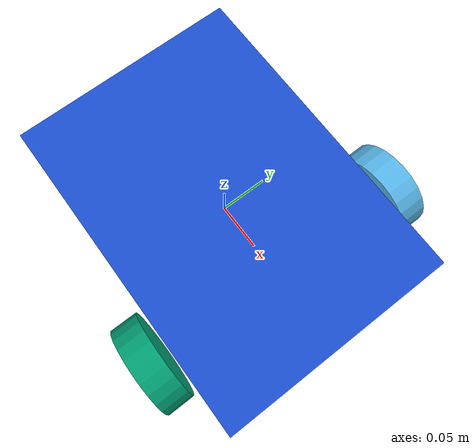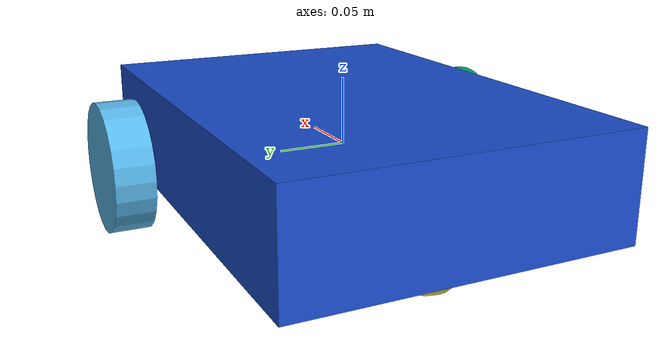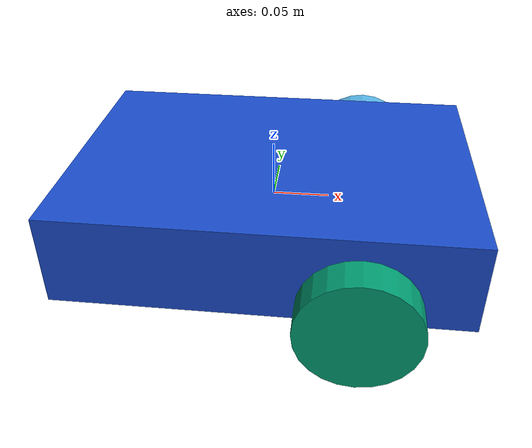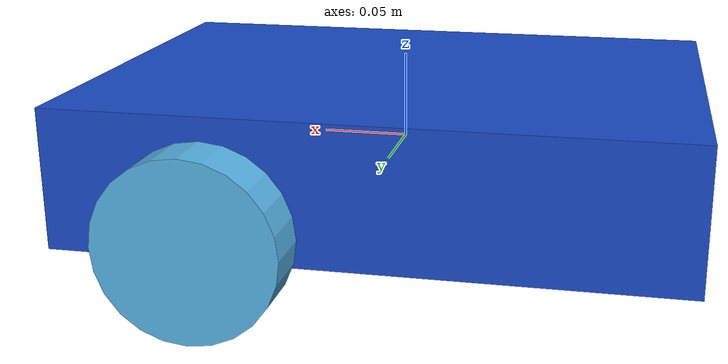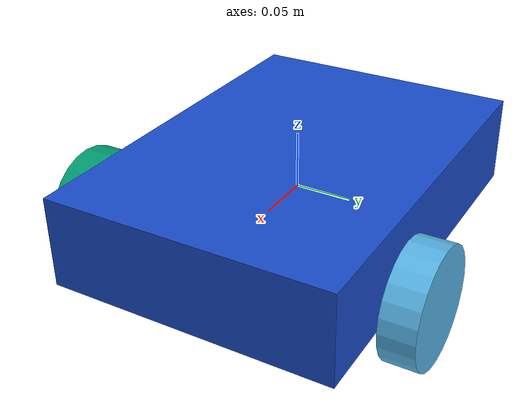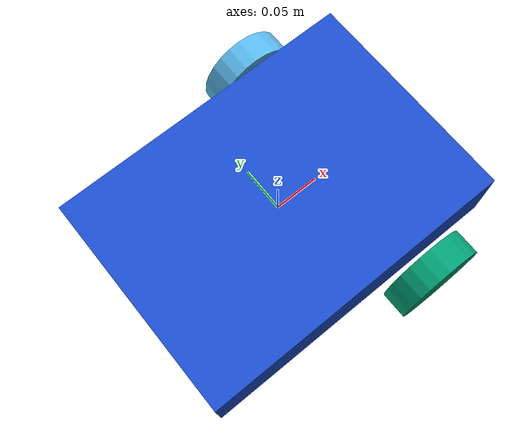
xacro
<?xml version="1.0"?>
<!-- Minimal diff-drive robot for Gazebo Fortress (ROS 2 Humble's paired Gazebo). -->
<robot name="diffbot" xmlns:xacro="http://www.ros.org/wiki/xacro">
  <xacro:property name="wheel_r" value="0.05"/>
  <xacro:property name="wheel_sep" value="0.30"/>
  <xacro:property name="wheel_w" value="0.03"/>

  <xacro:macro name="box_inertia" params="m x y z">
    <inertia ixx="${m*(y*y+z*z)/12}" iyy="${m*(x*x+z*z)/12}" izz="${m*(x*x+y*y)/12}"
             ixy="0" ixz="0" iyz="0"/>
  </xacro:macro>

  <link name="base_link">
    <visual><geometry><box size="0.35 0.25 0.08"/></geometry>
      <material name="blue"><color rgba="0.1 0.3 0.8 1"/></material></visual>
    <collision><geometry><box size="0.35 0.25 0.08"/></geometry></collision>
    <inertial><mass value="3.0"/><xacro:box_inertia m="3.0" x="0.35" y="0.25" z="0.08"/></inertial>
  </link>

  <xacro:macro name="wheel" params="side y">
    <link name="${side}_wheel">
      <visual><origin rpy="${pi/2} 0 0"/><geometry><cylinder radius="${wheel_r}" length="${wheel_w}"/></geometry></visual>
      <collision><origin rpy="${pi/2} 0 0"/><geometry><cylinder radius="${wheel_r}" length="${wheel_w}"/></geometry></collision>
      <inertial><mass value="0.3"/>
        <inertia ixx="0.0002" iyy="0.0004" izz="0.0002" ixy="0" ixz="0" iyz="0"/></inertial>
    </link>
    <joint name="${side}_wheel_joint" type="continuous">
      <parent link="base_link"/><child link="${side}_wheel"/>
      <origin xyz="0.08 ${y} -0.02"/><axis xyz="0 1 0"/>
    </joint>
  </xacro:macro>
  <xacro:wheel side="left" y="${wheel_sep/2}"/>
  <xacro:wheel side="right" y="${-wheel_sep/2}"/>

  <link name="caster">
    <visual><geometry><sphere radius="0.03"/></geometry></visual>
    <collision><geometry><sphere radius="0.03"/></geometry></collision>
    <inertial><mass value="0.1"/><inertia ixx="1e-5" iyy="1e-5" izz="1e-5" ixy="0" ixz="0" iyz="0"/></inertial>
  </link>
  <joint name="caster_joint" type="fixed">
    <parent link="base_link"/><child link="caster"/><origin xyz="-0.12 0 -0.04"/>
  </joint>
  <gazebo reference="caster"><mu1>0.0</mu1><mu2>0.0</mu2></gazebo>

  <gazebo>
    <plugin filename="ignition-gazebo-diff-drive-system" name="ignition::gazebo::systems::DiffDrive">
      <left_joint>left_wheel_joint</left_joint>
      <right_joint>right_wheel_joint</right_joint>
      <wheel_separation>${wheel_sep}</wheel_separation>
      <wheel_radius>${wheel_r}</wheel_radius>
      <topic>cmd_vel</topic>
      <odom_topic>odom</odom_topic>
      <tf_topic>tf</tf_topic>
      <frame_id>odom</frame_id>
      <child_frame_id>base_link</child_frame_id>
      <odom_publisher_frequency>50</odom_publisher_frequency>
      <!-- Actuator limits in the plant itself, so the MPC constraints are not the only thing enforcing them -->
      <max_linear_acceleration>1.0</max_linear_acceleration>
      <max_angular_acceleration>3.0</max_angular_acceleration>
    </plugin>
    <plugin filename="ignition-gazebo-joint-state-publisher-system"
            name="ignition::gazebo::systems::JointStatePublisher">
      <topic>joint_states</topic>
    </plugin>
  </gazebo>
</robot>
